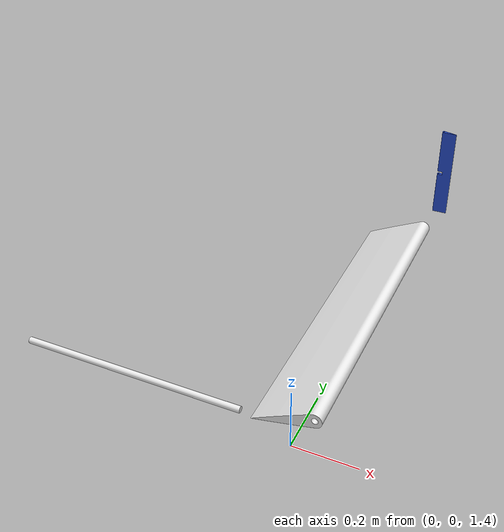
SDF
<?xml version='1.0'?>
<sdf version='1.6'>
  <model name='rigid_wing'>
    <link name='main_wing'>
      <pose frame=''>0 0 0 0 -0 0</pose>
      <inertial>
        <pose frame=''>0 0.5 1.5 -1.57172 0.001593 3.14148</pose>
        <mass>1.4</mass>
        <inertia>
          <ixx>0.15</ixx>
          <ixy>0</ixy>
          <ixz>0</ixz>
          <iyy>0.05</iyy>
          <iyz>0</iyz>
          <izz>0.15</izz>
        </inertia>
      </inertial>
      <gravity>1</gravity>
      <velocity_decay/>
      <self_collide>0</self_collide>
      <sensor name='main_altimeter' type='altimeter'>
        <always_on>1</always_on>
        <topic>/altimeter_data</topic>
        <visualize>1</visualize>
        <update_rate>10</update_rate>
        <frame name='altimeter_frame'>
          <pose frame='altimeter_frame'>0 0 0 0 -0 0</pose>
        </frame>
        <altimeter>
          <vertical_position>
            <noise type='none'/>
          </vertical_position>
          <vertical_velocity>
            <noise type='none'/>
          </vertical_velocity>
        </altimeter>
      </sensor>
      <sensor name='main_magnetometer' type='magnetometer'>
        <always_on>1</always_on>
        <topic>/magnetometer_data</topic>
        <visualize>1</visualize>
        <update_rate>10</update_rate>
        <frame name='magnetometer_frame'>
          <pose frame='magnetometer_frame'>0 0 0 0 -0 0</pose>
        </frame>
        <magnetometer>
          <x>
            <noise type='none'/>
          </x>
          <y>
            <noise type='none'/>
          </y>
          <z>
            <noise type='none'/>
          </z>
        </magnetometer>
      </sensor>
      <enable_wind>0</enable_wind>
      <kinematic>0</kinematic>
      <visual name='base_link_wing_visual'>
        <!--plugin name='visualize_vector_plugin' filename='libgazebo_visualize_vector_plugin.so'/-->
        <pose frame=''>0 0.5 1.5 -1.57172 0.001593 3.14148</pose>
        <geometry>
          <mesh>
            <scale>0.004 0.004 0.004</scale>
            <uri>model://rigid_wing/meshes/rudder.dae</uri>
          </mesh>
        </geometry>
        <material>
          <script>
            <name>Gazebo/White</name>
            <uri>__default__</uri>
          </script>
          <shader type='pixel'/>
          <emissive>0 0 0 1</emissive>
        </material>
        <transparency>0</transparency>
        <cast_shadows>1</cast_shadows>
      </visual>
      <visual name='base_link_core_visual'>
        <pose frame=''>-0.5 0 1.475 0 1.57 0</pose>
        <geometry>
          <cylinder>
            <radius>0.01</radius>
            <length>0.7</length>
          </cylinder>
        </geometry>
        <material>
          <script>
            <name>Gazebo/White</name>
            <uri>__default__</uri>
          </script>
          <shader type='pixel'>
            <normal_map>__default__</normal_map>
          </shader>
          <ambient>1 1 1 1</ambient>
          <diffuse>1 1 1 1</diffuse>
          <specular>0 0 0 1</specular>
          <emissive>0 0 0 1</emissive>
        </material>
        <transparency>0</transparency>
        <cast_shadows>1</cast_shadows>
      </visual>
      <collision name='base_link_collision_mounts'>
        <laser_retro>0</laser_retro>
        <max_contacts>10</max_contacts>
        <pose frame=''>-0.5 0 1.475 0 1.57 0</pose>
        <geometry>
          <box>
            <size>0.7 1 0.2</size>
          </box>
        </geometry>
        <surface>
          <friction>
            <ode>
              <mu>1</mu>
              <mu2>1</mu2>
              <fdir1>0 0 0</fdir1>
              <slip1>0</slip1>
              <slip2>0</slip2>
            </ode>
            <torsional>
              <coefficient>1</coefficient>
              <patch_radius>0</patch_radius>
              <surface_radius>0</surface_radius>
              <use_patch_radius>1</use_patch_radius>
              <ode>
                <slip>0</slip>
              </ode>
            </torsional>
          </friction>
          <bounce>
            <restitution_coefficient>0</restitution_coefficient>
            <threshold>1e+06</threshold>
          </bounce>
          <contact>
            <collide_without_contact>0</collide_without_contact>
            <collide_without_contact_bitmask>1</collide_without_contact_bitmask>
            <collide_bitmask>10</collide_bitmask>
            <ode>
              <soft_cfm>0</soft_cfm>
              <soft_erp>0.2</soft_erp>
              <kp>1e+13</kp>
              <kd>1</kd>
              <max_vel>10</max_vel>
              <min_depth>0.01</min_depth>
            </ode>
            <bullet>
              <split_impulse>1</split_impulse>
              <split_impulse_penetration_threshold>-0.01</split_impulse_penetration_threshold>
              <soft_cfm>0</soft_cfm>
              <soft_erp>0.2</soft_erp>
              <kp>1e+13</kp>
              <kd>1</kd>
            </bullet>
          </contact>
        </surface>
      </collision>
      <collision name='base_link_collision_wing'>
        <laser_retro>0</laser_retro>
        <max_contacts>10</max_contacts>
        <pose frame=''>0 0.5 1.5 -1.57172 0.001593 3.14148</pose>
        <geometry>
          <box>
            <size>0.05 1 0.25</size>
          </box>
        </geometry>
        <surface>
          <friction>
            <ode>
              <mu>1</mu>
              <mu2>1</mu2>
              <fdir1>0 0 0</fdir1>
              <slip1>0</slip1>
              <slip2>0</slip2>
            </ode>
            <torsional>
              <coefficient>1</coefficient>
              <patch_radius>0</patch_radius>
              <surface_radius>0</surface_radius>
              <use_patch_radius>1</use_patch_radius>
              <ode>
                <slip>0</slip>
              </ode>
            </torsional>
          </friction>
          <bounce>
            <restitution_coefficient>0</restitution_coefficient>
            <threshold>1e+06</threshold>
          </bounce>
          <contact>
            <collide_without_contact>0</collide_without_contact>
            <collide_without_contact_bitmask>1</collide_without_contact_bitmask>
            <collide_bitmask>00</collide_bitmask>
            <ode>
              <soft_cfm>0</soft_cfm>
              <soft_erp>0.2</soft_erp>
              <kp>1e+13</kp>
              <kd>1</kd>
              <max_vel>10</max_vel>
              <min_depth>0.01</min_depth>
            </ode>
            <bullet>
              <split_impulse>1</split_impulse>
              <split_impulse_penetration_threshold>-0.01</split_impulse_penetration_threshold>
              <soft_cfm>0</soft_cfm>
              <soft_erp>0.2</soft_erp>
              <kp>1e+13</kp>
              <kd>1</kd>
            </bullet>
          </contact>
        </surface>
      </collision>
    </link>
    <link name='elevator'>
      <pose frame=''>-0.843084 0 1.475 1.57 0 3.14</pose>
      <inertial>
        <mass>0.1</mass>
        <inertia>
          <ixx>1e-06</ixx>
          <ixy>0</ixy>
          <iyy>1e-06</iyy>
          <ixz>0</ixz>
          <iyz>0</iyz>
          <izz>1e-06</izz>
        </inertia>
        <pose frame=''>-0.843084 0 1.475 1.57 0 3.14</pose>
      </inertial>
      <self_collide>0</self_collide>
      <enable_wind>0</enable_wind>
      <kinematic>0</kinematic>
      <gravity>1</gravity>
      <visual name='elevator_visual'>
        <pose frame=''>-0.843084 0 1.475 1.57 0 3.14</pose>
        <geometry>
          <mesh>
            <scale>0.001 0.001 0.0005</scale>
            <uri>model://rigid_wing/meshes/elevator.dae</uri>
          </mesh>
        </geometry>
        <material>
          <script>
            <name>Gazebo/Blue</name>
            <uri>__default__</uri>
          </script>
          <shader type='pixel'>
            <normal_map>__default__</normal_map>
          </shader>
          <ambient>0 0 1 1</ambient>
          <diffuse>0 0 1 1</diffuse>
          <specular>0.1 0.1 0.1 1</specular>
          <emissive>0 0 0 1</emissive>
        </material>
        <transparency>0</transparency>
        <cast_shadows>1</cast_shadows>
      </visual>
      <collision name="elevator_collision">
	<pose frame=''>-0.843084 0 1.475 1.57 0 3.14</pose>
        <geometry>
          <mesh>
            <scale>0.001 0.001 0.0005</scale>
            <uri>model://rigid_wing/meshes/elevator.dae</uri>
          </mesh>
        </geometry>
      </collision>
    </link>
    <joint name='elevator_joint' type='revolute'>
      <parent>main_wing</parent>
      <child>elevator</child>
      <pose frame=''>-0.843084 0 1.475 0 -0 0</pose>
      <axis>
        <xyz>0 1 0</xyz>
        <use_parent_model_frame>0</use_parent_model_frame>
        <limit>
          <lower>-6.981</lower>
          <upper>6.981</upper>
          <effort>-1</effort>
          <velocity>-1</velocity>
        </limit>
        <dynamics>
          <damping>1.000</damping>
        </dynamics>
      </axis>
      <physics>
        <ode>
          <implicit_spring_damper>1</implicit_spring_damper>
        </ode>
      </physics>
    </joint>
    <static>0</static>
    <allow_auto_disable>1</allow_auto_disable>

    <plugin name='gazebo_control' filename='libgazebo_control_plugin.so'>
    <elevator_joint_name>elevator_joint</elevator_joint_name>
    <rudder_joint_name>rudder_joint</rudder_joint_name>
    <link_name>rigid_wing::elevator</link_name>
    <elevator_p_gain>10000</elevator_p_gain>
    <elevator_i_gain>0.1</elevator_i_gain>
    <elevator_d_gain>1</elevator_d_gain>
    <rudder_p_gain>10000</rudder_p_gain>
    <rudder_i_gain>0.1</rudder_i_gain>
    <rudder_d_gain>1</rudder_d_gain>
    </plugin>

  </model>
</sdf>
